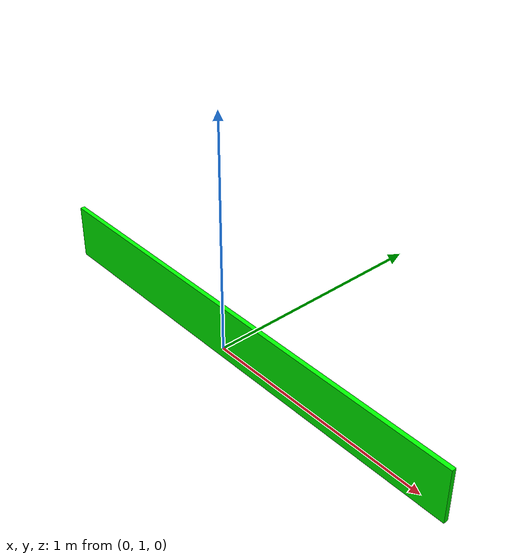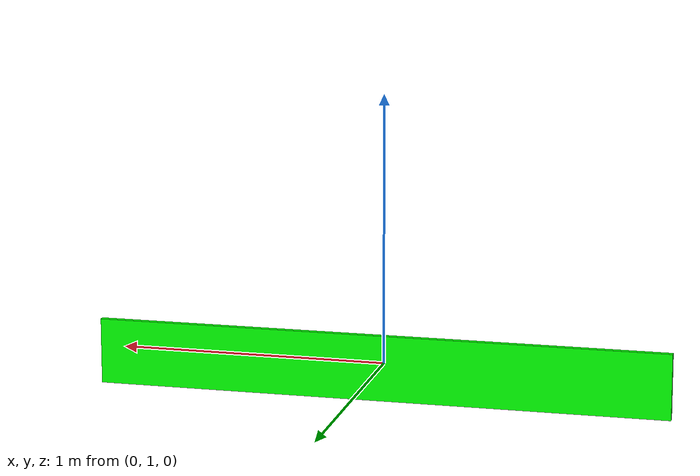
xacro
<?xml version="1.0"?>
<robot name="testbed" xmlns:xacro="http://www.ros.org/wiki/xacro">

  <!-- Colors used for testbed walls. -->
  <material name="Green">
    <color rgba="0.0 1.0 0.0 1.0"/>
  </material>

  <material name="Cyan">
    <color rgba="0.0 1.0 1.0 1.0"/>
  </material>

  <material name="Orange">
    <color rgba="1.0 0.65 0.3 1.0"/>
  </material>

  <material name="Purple">
    <color rgba="0.55 0 0.55 1.0"/>
  </material>

  <!-- Universal Values -->
  <xacro:property name="PI" value="3.14159265358979"/>

  <!-- Property List -->
  <xacro:property name="side_2_length" value="2.135"/>
  <xacro:property name="side_2_width" value="0.02"/>
  <xacro:property name="side_2_height" value="0.245"/>
  <xacro:property name="side_2_mass" value="1.0"/>
  <xacro:property name="side_2_x" value="0.0"/>
  <xacro:property name="side_2_y" value="${2.135 / 2}"/>
  <xacro:property name="side_2_z" value="0.0"/>
  <xacro:property name="side_2_roll" value="0.0"/>
  <xacro:property name="side_2_pitch" value="0.0"/>
  <xacro:property name="side_2_yaw" value="${PI / 2}"/>

  <!-- ############################## LINK ############################## -->

  <link name="side_2_link">
    <visual>
      <material name="Green"/>
      <origin xyz="${side_2_x} ${side_2_y} ${side_2_z}" rpy="${side_2_roll} ${side_2_pitch} ${side_2_yaw}"/>
      <geometry>
        <box size="${side_2_width} ${side_2_length} ${side_2_height}"/>
      </geometry>
    </visual>
    <inertial>
      <mass value="${side_2_mass}"/>
      <origin xyz="${side_2_x} ${side_2_y} ${side_2_z}" rpy="${side_2_roll} ${side_2_pitch} ${side_2_yaw}"/>
      <inertia ixx="1.0" ixy="0.0" ixz="0.0" iyy="1.0" iyz="0.0" izz="1.0"/>
    </inertial>
    <collision>
      <origin xyz="${side_2_x} ${side_2_y} ${side_2_z}" rpy="${side_2_roll} ${side_2_pitch} ${side_2_yaw}"/>
      <geometry>
        <box size="${side_2_length} ${side_2_width} ${side_2_height}"/>
      </geometry>
    </collision>
  </link>

  <gazebo reference="side_2_link">
    <material>Gazebo/Orange</material>
    <turnGravityOff>false</turnGravityOff>
  </gazebo>

</robot>
